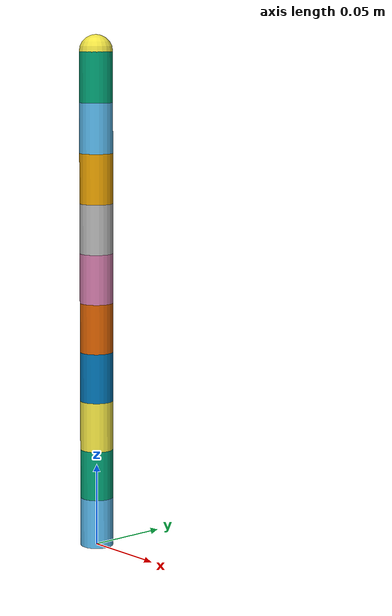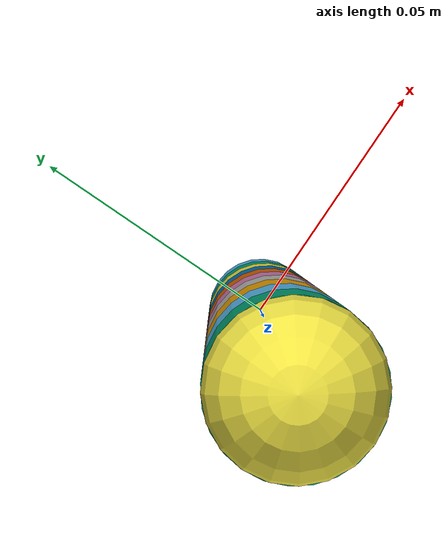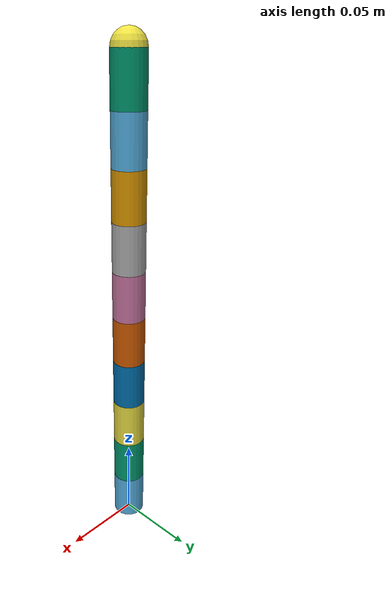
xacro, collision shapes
<?xml version="1.0"?>
<robot xmlns:xacro="http://www.ros.org/wiki/xacro" name="flexy_arm">

    <!-- Macro to calculate cylinder inertia -->
    <xacro:macro name="cylinder_inertia" params="radius length mass">
        <inertia ixx="${0.25 * mass * radius * radius + (1 / 12) * mass * length * length}"
                 ixy="0.0" ixz="0.0"
                 iyy="${0.25 * mass * radius * radius + (1 / 12) * mass * length * length}"
                 iyz="0.0"
                 izz="${0.5 * mass * radius * radius}" />
    </xacro:macro>

    <!-- Macro to calculate sphere inertia -->
    <xacro:macro name="sphere_inertia" params="radius mass">
        <inertia ixx="${2/5 * mass * radius * radius}"
                 ixy="0.0" ixz="0.0"
                 iyy="${2/5 * mass * radius * radius}"
                 iyz="0.0"
                 izz="${2/5 * mass * radius * radius}" />
    </xacro:macro>

    <xacro:property name="width" value="0.01" />
    <xacro:property name="sphere_radius" value="${width}" />

    <!-- Macro for generating the flexible arm -->
    <xacro:macro name="flex_arm" params="prefix L n m xyz rpy">
        <!-- Create the base link -->
        <link name="${prefix}_base"/>

        <!-- First joint between the base and the first link -->
        <xacro:property name="l" value="${L / n}" />
        <link name="${prefix}_link_1">
            <visual>
                <geometry>
                    <mesh filename="meshes/single_segment.dae" scale="0.0006 0.0006 ${0.003 / n}"/>
                </geometry>
                <origin xyz="0 0 ${l / 2}" />
            </visual>
            <collision>
                <geometry>
                    <cylinder radius="${width}" length="${l}" />
                </geometry>
                <origin xyz="0 0 ${l / 2}" />
            </collision>
            <inertial>
                <mass value="${m / (n+1)}" />
                <xacro:cylinder_inertia radius="${width}" length="${l}" mass="${m / (n+1)}" />
            </inertial>
        </link>

        <joint name="${prefix}_joint_1" type="revolute">
            <parent link="${prefix}_base" />
            <child link="${prefix}_link_1" />
            <axis xyz="1 0 0" />
            <origin xyz="${xyz}" rpy="${rpy}" />
            <limit effort="10.0" velocity="1.0" lower="-1.57" upper="1.57" />
        </joint>

        <!-- Generate the rest of the chain -->
        <xacro:recursive_flex_arm prefix="${prefix}" L="${L}" n="${n - 1}" current_link="1" />
    </xacro:macro>

    <!-- Recursive macro for generating subsequent links -->
    <xacro:macro name="recursive_flex_arm" params="prefix L n current_link">
        <xacro:if value="${n > 0}">

            <xacro:property name="N" value="${n + current_link}" />
            <xacro:property name="l" value="${L / N}" />

            <!-- Create the next link -->
            <link name="${prefix}_link_${current_link + 1}">
                <visual>
                    <geometry>
                        <mesh filename="meshes/single_segment.dae" scale="0.0006 0.0006 ${0.003 / N}"/>
                    </geometry>
                    <origin xyz="0 0 ${l / 2}" />
                </visual>
                <collision>
                    <geometry>
                        <cylinder radius="${width}" length="${l}" />
                    </geometry>
                    <origin xyz="0 0 ${l / 2}" />
                </collision>
                <inertial>
                    <mass value="${m / (N +1)}" />
                    <xacro:cylinder_inertia radius="${width}" length="${l}" mass="${m / (N +1)}" />
                </inertial>
            </link>

            <!-- Create the revolute joint -->
            <joint name="${prefix}_joint_${current_link + 1}" type="revolute">
                <parent link="${prefix}_link_${current_link}" />
                <child link="${prefix}_link_${current_link + 1}" />
                <axis xyz="1 0 0" />
                <origin xyz="0 0 ${l}" rpy="0 0 0" />
                <limit effort="100000.0" velocity="1000.0" lower="-1.57" upper="1.57" />
            </joint>

            <!-- Recursively generate the rest of the chain -->
            <xacro:recursive_flex_arm prefix="${prefix}" L="${L}" n="${n - 1}" current_link="${current_link + 1}" />
        </xacro:if>

        <!-- Add sphere at the end of the last link -->
        <xacro:unless value="${n > 0}">
            <link name="${prefix}_sphere">
                <visual>
                    <geometry>
                        <sphere radius="${sphere_radius}" />
                    </geometry>
                    <origin xyz="0 0 ${sphere_radius}" />
                </visual>
                <collision>
                    <geometry>
                        <sphere radius="${sphere_radius}" />
                    </geometry>
                    <origin xyz="0 0 ${sphere_radius}" />
                </collision>
                <inertial>
                    <mass value="${m / (N + 1)}" />
                    <xacro:sphere_inertia radius="${sphere_radius}" mass="${m / (N + 1)}" />
                </inertial>
            </link>

            <joint name="${prefix}_fixed_joint_sphere" type="fixed">
                <parent link="${prefix}_link_${current_link}" />
                <child link="${prefix}_sphere" />
                <origin xyz="0 0 ${l-sphere_radius}" rpy="0 0 0" />
            </joint>
        </xacro:unless>
    </xacro:macro>

    <xacro:flex_arm prefix="arm" L="0.3" n="10" m="1.0" xyz=" 0.0 0.0 0.0" rpy="0.0 0.0 1.57079"/>
</robot>
